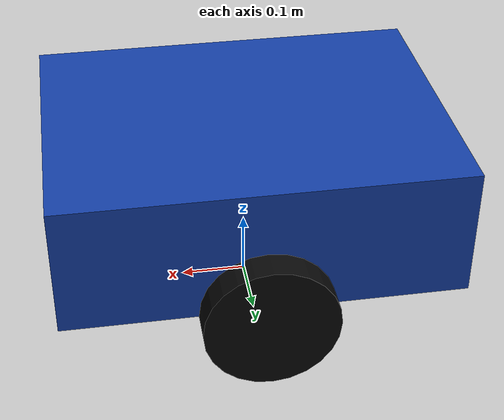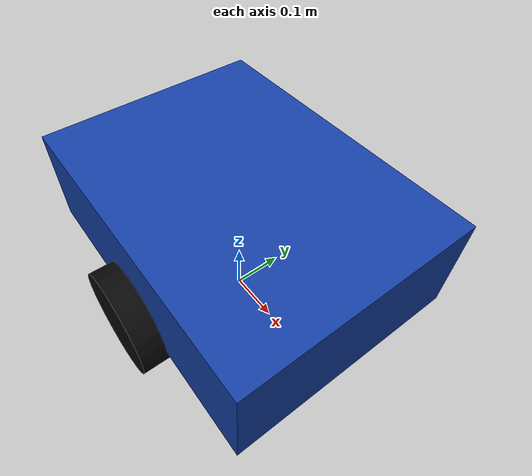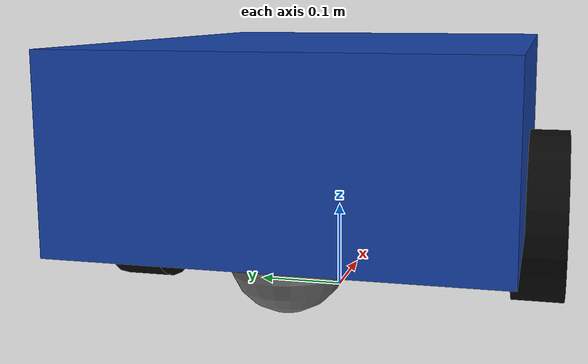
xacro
<?xml version="1.0"?>
<robot xmlns:xacro="http://www.ros.org/wiki/xacro" name="gazebo_diffbot">
  <xacro:include filename="robot_base_macro.xacro"/>
  <xacro:include filename="sensor_macros.xacro"/>

  <!-- The mobile base is ready. Install the three sensors during Experiment 3. -->
  <xacro:differential_robot_base/>

  <!-- STEP 1: Install the camera below this line. -->

  <!-- STEP 2: Install the Mid-360-like lidar below this line. -->

  <!-- STEP 3: Install the IMU below this line. -->
</robot>

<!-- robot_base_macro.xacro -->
<robot xmlns:xacro="http://www.ros.org/wiki/xacro">
  <xacro:macro name="differential_wheel" params="name y radius width">
    <link name="${name}_wheel_link">
      <visual>
        <origin rpy="1.57079632679 0 0"/>
        <geometry>
          <cylinder radius="${radius}" length="${width}"/>
        </geometry>
        <material name="black"/>
      </visual>
      <collision>
        <origin rpy="1.57079632679 0 0"/>
        <geometry>
          <cylinder radius="${radius}" length="${width}"/>
        </geometry>
      </collision>
      <inertial>
        <mass value="1.0"/>
        <inertia ixx="0.005" ixy="0" ixz="0"
                 iyy="0.005" iyz="0" izz="0.005"/>
      </inertial>
    </link>
    <joint name="${name}_wheel_joint" type="continuous">
      <parent link="base_link"/>
      <child link="${name}_wheel_link"/>
      <origin xyz="0 ${y} ${radius}"/>
      <axis xyz="0 1 0"/>
    </joint>
  </xacro:macro>

  <xacro:macro name="differential_robot_base" params="">
    <xacro:property name="base_length" value="0.60"/>
    <xacro:property name="base_width" value="0.45"/>
    <xacro:property name="base_height" value="0.20"/>
    <xacro:property name="wheel_radius" value="0.10"/>
    <xacro:property name="wheel_width" value="0.06"/>
    <xacro:property name="wheel_separation" value="0.48"/>

    <material name="blue">
      <color rgba="0.08 0.25 0.65 1.0"/>
    </material>
    <material name="black">
      <color rgba="0.03 0.03 0.03 1.0"/>
    </material>
    <material name="gray">
      <color rgba="0.45 0.45 0.45 1.0"/>
    </material>

    <link name="base_link">
      <visual>
        <origin xyz="0 0 ${wheel_radius + base_height / 2}"/>
        <geometry>
          <box size="${base_length} ${base_width} ${base_height}"/>
        </geometry>
        <material name="blue"/>
      </visual>
      <collision>
        <origin xyz="0 0 ${wheel_radius + base_height / 2}"/>
        <geometry>
          <box size="${base_length} ${base_width} ${base_height}"/>
        </geometry>
      </collision>
      <inertial>
        <origin xyz="0 0 ${wheel_radius + base_height / 2}"/>
        <mass value="12.0"/>
        <inertia ixx="0.25" ixy="0" ixz="0"
                 iyy="0.40" iyz="0" izz="0.55"/>
      </inertial>
    </link>

    <xacro:differential_wheel
      name="left"
      y="${wheel_separation / 2}"
      radius="${wheel_radius}"
      width="${wheel_width}"/>
    <xacro:differential_wheel
      name="right"
      y="-${wheel_separation / 2}"
      radius="${wheel_radius}"
      width="${wheel_width}"/>

    <link name="caster_link">
      <visual>
        <origin xyz="0 0 ${wheel_radius}"/>
        <geometry>
          <sphere radius="0.06"/>
        </geometry>
        <material name="gray"/>
      </visual>
      <collision>
        <origin xyz="0 0 ${wheel_radius}"/>
        <geometry>
          <sphere radius="0.06"/>
        </geometry>
      </collision>
      <inertial>
        <mass value="0.3"/>
        <inertia ixx="0.0004" ixy="0" ixz="0"
                 iyy="0.0004" iyz="0" izz="0.0004"/>
      </inertial>
    </link>
    <joint name="caster_joint" type="fixed">
      <parent link="base_link"/>
      <child link="caster_link"/>
      <origin xyz="-${base_length / 2 - 0.08} 0 0"/>
    </joint>

    <gazebo reference="base_link">
      <material>Gazebo/Blue</material>
    </gazebo>
    <gazebo reference="left_wheel_link">
      <material>Gazebo/Black</material>
    </gazebo>
    <gazebo reference="right_wheel_link">
      <material>Gazebo/Black</material>
    </gazebo>

    <gazebo>
      <plugin name="diff_drive" filename="libgazebo_ros_diff_drive.so">
        <ros>
          <namespace>/</namespace>
        </ros>
        <update_rate>50</update_rate>
        <left_joint>left_wheel_joint</left_joint>
        <right_joint>right_wheel_joint</right_joint>
        <wheel_separation>${wheel_separation}</wheel_separation>
        <wheel_diameter>${2 * wheel_radius}</wheel_diameter>
        <max_wheel_torque>20</max_wheel_torque>
        <max_wheel_acceleration>10</max_wheel_acceleration>
        <command_topic>cmd_vel</command_topic>
        <odometry_topic>odom</odometry_topic>
        <odometry_frame>odom</odometry_frame>
        <robot_base_frame>base_link</robot_base_frame>
        <publish_odom>true</publish_odom>
        <publish_odom_tf>true</publish_odom_tf>
        <publish_wheel_tf>false</publish_wheel_tf>
        <publish_wheel_joint_state>true</publish_wheel_joint_state>
      </plugin>
    </gazebo>
  </xacro:macro>
</robot>
